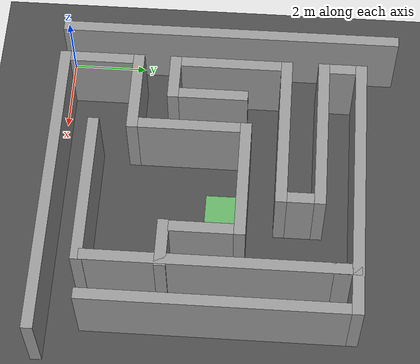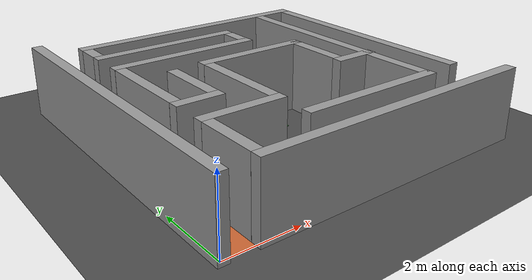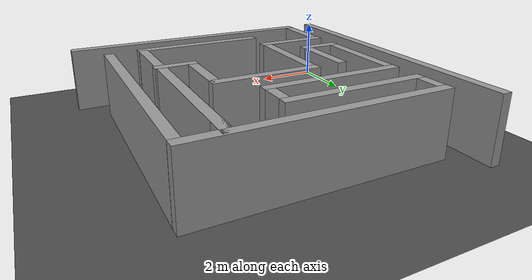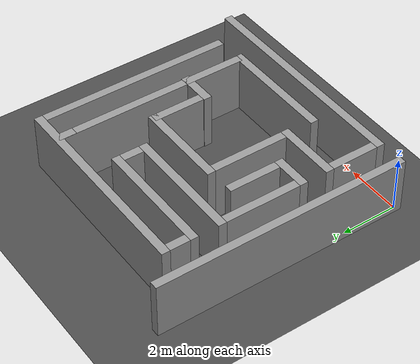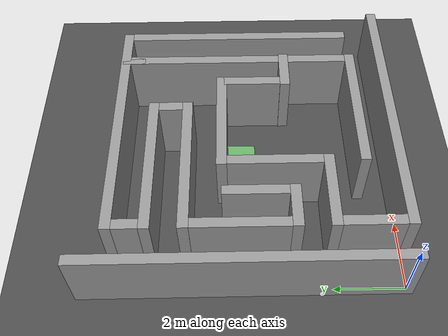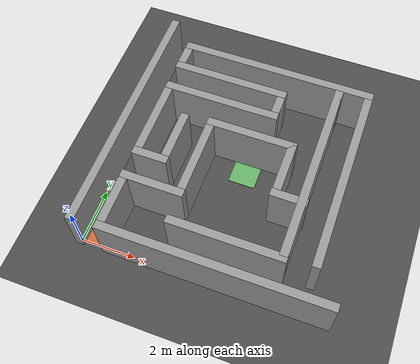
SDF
<sdf version="1.6">
 <world name="default">
  <light name="sun" type="directional">
   <pose>0 0 10 0 -0 0</pose>
   <diffuse>0.8 0.8 0.8 1</diffuse>
   <specular>0.1 0.1 0.1 1</specular>
   <attenuation>
    <range>1000</range>
    <constant>0.9</constant>
    <linear>0.01</linear>
    <quadratic>0.001</quadratic>
   </attenuation>
   <direction>-0.5 0.5 -1</direction>
  </light>
  <model name="ground_plane">
   <static>1</static>
   <link name="link">
    <collision name="collision">
     <geometry><plane><normal>0 0 1</normal><size>20 20</size></plane></geometry>
     <surface><friction><ode><mu>100</mu><mu2>50</mu2></ode></friction></surface>
    </collision>
    <visual name="visual">
     <cast_shadows>0</cast_shadows>
     <geometry><plane><normal>0 0 1</normal><size>20 20</size></plane></geometry>
     <material>
      <script>
       <uri>model://asphalt_plane/materials/scripts</uri>
       <uri>model://asphalt_plane/materials/textures</uri>
       <name>vrc/asphalt</name>
      </script>
     </material>
    </visual>
   </link>
  </model>
  <gravity>0 0 -9.8</gravity>
  <magnetic_field>6e-06 2.3e-05 -4.2e-05</magnetic_field>
  <atmosphere type="adiabatic"/>
  <physics name="default_physics" default="0" type="ode">
   <max_step_size>0.001</max_step_size>
   <real_time_factor>1</real_time_factor>
   <real_time_update_rate>1000</real_time_update_rate>
  </physics>
  <scene><ambient>0.4 0.4 0.4 1</ambient><background>0.7 0.7 0.7 1</background><shadows>1</shadows></scene>
  <spherical_coordinates>
   <surface_model>EARTH_WGS84</surface_model>
   <latitude_deg>0</latitude_deg>
   <longitude_deg>0</longitude_deg>
   <elevation>0</elevation>
   <heading_deg>0</heading_deg>
  </spherical_coordinates>
  <model name="box_goal">
   <static>1</static>
   <link name="link">
    <inertial>
     <mass>1</mass>
     <inertia>
      <ixx>0.166667</ixx>
      <ixy>0</ixy>
      <ixz>0</ixz>
      <iyy>0.166667</iyy>
      <iyz>0</iyz>
      <izz>0.166667</izz>
     </inertia>
    </inertial>
    <visual name="visual">
     <geometry><box><size>1 1 0.1</size></box></geometry>
     <material>
      <script><name>Gazebo/Grey</name><uri>file://media/materials/scripts/gazebo.material</uri></script>
      <ambient>0.3 1 0.3 1</ambient>
      <diffuse>0.4 0.7 0.4 1</diffuse>
      <specular>0.01 0.05 0.01 1</specular>
      <emissive>0 0.02 0 1</emissive>
      <shader type="vertex"><normal_map>__default__</normal_map></shader>
     </material>
    </visual>
    <collision name="collision">
     <geometry><box><size>1 1 0.1</size></box></geometry>
     <surface>
      <friction>
       <ode><mu>1</mu><mu2>1</mu2><fdir1>0 0 0</fdir1><slip1>0</slip1><slip2>0</slip2></ode>
       <torsional>
        <coefficient>1</coefficient>
        <patch_radius>0</patch_radius>
        <surface_radius>0</surface_radius>
        <use_patch_radius>1</use_patch_radius>
        <ode><slip>0</slip></ode>
       </torsional>
      </friction>
      <bounce><restitution_coefficient>0</restitution_coefficient><threshold>1e+06</threshold></bounce>
      <contact>
       <collide_without_contact>0</collide_without_contact>
       <collide_without_contact_bitmask>1</collide_without_contact_bitmask>
       <collide_bitmask>1</collide_bitmask>
       <ode>
        <soft_cfm>0</soft_cfm>
        <soft_erp>0.2</soft_erp>
        <kp>1e+13</kp>
        <kd>1</kd>
        <max_vel>0.01</max_vel>
        <min_depth>0</min_depth>
       </ode>
       <bullet>
        <split_impulse>1</split_impulse>
        <split_impulse_penetration_threshold>-0.01</split_impulse_penetration_threshold>
        <soft_cfm>0</soft_cfm>
        <soft_erp>0.2</soft_erp>
        <kp>1e+13</kp>
        <kd>1</kd>
       </bullet>
      </contact>
     </surface>
    </collision>
   </link>
   <static>0</static>
   <pose>4.5 4.5 -0.042 0 -0 0</pose>
  </model>
  <model name="box_init">
   <static>1</static>
   <link name="link">
    <inertial>
     <mass>1</mass>
     <inertia>
      <ixx>0.166667</ixx>
      <ixy>0</ixy>
      <ixz>0</ixz>
      <iyy>0.166667</iyy>
      <iyz>0</iyz>
      <izz>0.166667</izz>
     </inertia>
    </inertial>
    <visual name="visual">
     <geometry><box><size>1 1 0.1</size></box></geometry>
     <material>
      <script><name>Gazebo/Grey</name><uri>file://media/materials/scripts/gazebo.material</uri></script>
      <ambient>1 0.5 0.2 1</ambient>
      <diffuse>0.8 0.4 0.2 1</diffuse>
      <specular>0.05 0.02 0.01 1</specular>
      <emissive>0 0 0 1</emissive>
      <shader type="vertex"><normal_map>__default__</normal_map></shader>
     </material>
    </visual>
    <collision name="collision">
     <geometry><box><size>1 1 0.1</size></box></geometry>
     <surface>
      <friction>
       <ode><mu>1</mu><mu2>1</mu2><fdir1>0 0 0</fdir1><slip1>0</slip1><slip2>0</slip2></ode>
       <torsional>
        <coefficient>1</coefficient>
        <patch_radius>0</patch_radius>
        <surface_radius>0</surface_radius>
        <use_patch_radius>1</use_patch_radius>
        <ode><slip>0</slip></ode>
       </torsional>
      </friction>
      <bounce><restitution_coefficient>0</restitution_coefficient><threshold>1e+06</threshold></bounce>
      <contact>
       <collide_without_contact>0</collide_without_contact>
       <collide_without_contact_bitmask>1</collide_without_contact_bitmask>
       <collide_bitmask>1</collide_bitmask>
       <ode>
        <soft_cfm>0</soft_cfm>
        <soft_erp>0.2</soft_erp>
        <kp>1e+13</kp>
        <kd>1</kd>
        <max_vel>0.01</max_vel>
        <min_depth>0</min_depth>
       </ode>
       <bullet>
        <split_impulse>1</split_impulse>
        <split_impulse_penetration_threshold>-0.01</split_impulse_penetration_threshold>
        <soft_cfm>0</soft_cfm>
        <soft_erp>0.2</soft_erp>
        <kp>1e+13</kp>
        <kd>1</kd>
       </bullet>
      </contact>
     </surface>
    </collision>
   </link>
   <static>0</static>
   <allow_auto_disable>0</allow_auto_disable>
   <pose>0.5 0.5 -0.042 0 -0 0</pose>
  </model>
  <model name="greywall_9L4W">
   <link name="link">
    <pose>0 4.425 1 0 -0 1.57</pose>
    <inertial>
     <mass>20</mass>
     <inertia><ixx>1</ixx><ixy>0</ixy><ixz>0</ixz><iyy>1</iyy><iyz>0</iyz><izz>1</izz></inertia>
    </inertial>
    <visual name="ModelPreview_1::link::visual_1">
     <geometry><box><size>9.15 0.3 2</size></box></geometry>
     <material>
      <script>
       <uri>model://grey_wall/materials/scripts</uri>
       <uri>model://grey_wall/materials/textures</uri>
       <name>vrc/grey_wall</name>
      </script>
      <ambient>1 1 1 1</ambient>
      <diffuse>1 1 1 1</diffuse>
      <specular>0 0 0 1</specular>
      <emissive>0 0 0 1</emissive>
      <shader type="vertex"><normal_map>__default__</normal_map></shader>
     </material>
    </visual>
    <collision name="collision">
     <geometry><box><size>9.15 0.3 2</size></box></geometry>
     <surface>
      <friction>
       <ode><mu>1</mu><mu2>1</mu2><fdir1>0 0 0</fdir1><slip1>0</slip1><slip2>0</slip2></ode>
       <torsional>
        <coefficient>1</coefficient>
        <patch_radius>0</patch_radius>
        <surface_radius>0</surface_radius>
        <use_patch_radius>1</use_patch_radius>
        <ode><slip>0</slip></ode>
       </torsional>
      </friction>
      <bounce><restitution_coefficient>0</restitution_coefficient><threshold>1e+06</threshold></bounce>
      <contact>
       <collide_without_contact>0</collide_without_contact>
       <collide_without_contact_bitmask>1</collide_without_contact_bitmask>
       <collide_bitmask>1</collide_bitmask>
       <ode>
        <soft_cfm>0</soft_cfm>
        <soft_erp>0.2</soft_erp>
        <kp>1e+13</kp>
        <kd>1</kd>
        <max_vel>0.01</max_vel>
        <min_depth>0</min_depth>
       </ode>
       <bullet>
        <split_impulse>1</split_impulse>
        <split_impulse_penetration_threshold>-0.01</split_impulse_penetration_threshold>
        <soft_cfm>0</soft_cfm>
        <soft_erp>0.2</soft_erp>
        <kp>1e+13</kp>
        <kd>1</kd>
       </bullet>
      </contact>
     </surface>
    </collision>
   </link>
   <static>1</static>
  </model>
  <model name="greywall_8L36S">
   <link name="link">
    <pose>4.925 0 1 0 -0 0</pose>
    <inertial>
     <mass>20</mass>
     <inertia><ixx>1</ixx><ixy>0</ixy><ixz>0</ixz><iyy>1</iyy><iyz>0</iyz><izz>1</izz></inertia>
    </inertial>
    <visual name="ModelPreview_1::link::visual_1">
     <geometry><box><size>8.15 0.3 2</size></box></geometry>
     <material>
      <script>
       <uri>model://grey_wall/materials/scripts</uri>
       <uri>model://grey_wall/materials/textures</uri>
       <name>vrc/grey_wall</name>
      </script>
      <ambient>1 1 1 1</ambient>
      <diffuse>1 1 1 1</diffuse>
      <specular>0 0 0 1</specular>
      <emissive>0 0 0 1</emissive>
      <shader type="vertex"><normal_map>__default__</normal_map></shader>
     </material>
    </visual>
    <collision name="collision">
     <geometry><box><size>8.15 0.3 2</size></box></geometry>
     <surface>
      <friction>
       <ode><mu>1</mu><mu2>1</mu2><fdir1>0 0 0</fdir1><slip1>0</slip1><slip2>0</slip2></ode>
       <torsional>
        <coefficient>1</coefficient>
        <patch_radius>0</patch_radius>
        <surface_radius>0</surface_radius>
        <use_patch_radius>1</use_patch_radius>
        <ode><slip>0</slip></ode>
       </torsional>
      </friction>
      <bounce><restitution_coefficient>0</restitution_coefficient><threshold>1e+06</threshold></bounce>
      <contact>
       <collide_without_contact>0</collide_without_contact>
       <collide_without_contact_bitmask>1</collide_without_contact_bitmask>
       <collide_bitmask>1</collide_bitmask>
       <ode>
        <soft_cfm>0</soft_cfm>
        <soft_erp>0.2</soft_erp>
        <kp>1e+13</kp>
        <kd>1</kd>
        <max_vel>0.01</max_vel>
        <min_depth>0</min_depth>
       </ode>
       <bullet>
        <split_impulse>1</split_impulse>
        <split_impulse_penetration_threshold>-0.01</split_impulse_penetration_threshold>
        <soft_cfm>0</soft_cfm>
        <soft_erp>0.2</soft_erp>
        <kp>1e+13</kp>
        <kd>1</kd>
       </bullet>
      </contact>
     </surface>
    </collision>
   </link>
   <static>1</static>
  </model>
  <model name="greywall_7L66W">
   <link name="link">
    <pose>7 3.575 1 0 -0 1.57</pose>
    <inertial>
     <mass>20</mass>
     <inertia><ixx>1</ixx><ixy>0</ixy><ixz>0</ixz><iyy>1</iyy><iyz>0</iyz><izz>1</izz></inertia>
    </inertial>
    <visual name="ModelPreview_1::link::visual_1">
     <geometry><box><size>6.85 0.3 2</size></box></geometry>
     <material>
      <script>
       <uri>model://grey_wall/materials/scripts</uri>
       <uri>model://grey_wall/materials/textures</uri>
       <name>vrc/grey_wall</name>
      </script>
      <ambient>1 1 1 1</ambient>
      <diffuse>1 1 1 1</diffuse>
      <specular>0 0 0 1</specular>
      <emissive>0 0 0 1</emissive>
      <shader type="vertex"><normal_map>__default__</normal_map></shader>
     </material>
    </visual>
    <collision name="collision">
     <geometry><box><size>6.85 0.3 2</size></box></geometry>
     <surface>
      <friction>
       <ode><mu>1</mu><mu2>1</mu2><fdir1>0 0 0</fdir1><slip1>0</slip1><slip2>0</slip2></ode>
       <torsional>
        <coefficient>1</coefficient>
        <patch_radius>0</patch_radius>
        <surface_radius>0</surface_radius>
        <use_patch_radius>1</use_patch_radius>
        <ode><slip>0</slip></ode>
       </torsional>
      </friction>
      <bounce><restitution_coefficient>0</restitution_coefficient><threshold>1e+06</threshold></bounce>
      <contact>
       <collide_without_contact>0</collide_without_contact>
       <collide_without_contact_bitmask>1</collide_without_contact_bitmask>
       <collide_bitmask>1</collide_bitmask>
       <ode>
        <soft_cfm>0</soft_cfm>
        <soft_erp>0.2</soft_erp>
        <kp>1e+13</kp>
        <kd>1</kd>
        <max_vel>0.01</max_vel>
        <min_depth>0</min_depth>
       </ode>
       <bullet>
        <split_impulse>1</split_impulse>
        <split_impulse_penetration_threshold>-0.01</split_impulse_penetration_threshold>
        <soft_cfm>0</soft_cfm>
        <soft_erp>0.2</soft_erp>
        <kp>1e+13</kp>
        <kd>1</kd>
       </bullet>
      </contact>
     </surface>
    </collision>
   </link>
   <static>1</static>
   <pose>-0.07235 0.8652 0 0 -0 0</pose>
  </model>
  <model name="greywall_7L76W">
   <link name="link">
    <pose>8 4.425 1 0 -0 1.57</pose>
    <inertial>
     <mass>20</mass>
     <inertia><ixx>1</ixx><ixy>0</ixy><ixz>0</ixz><iyy>1</iyy><iyz>0</iyz><izz>1</izz></inertia>
    </inertial>
    <visual name="ModelPreview_1::link::visual_1">
     <geometry><box><size>6.85 0.3 2</size></box></geometry>
     <material>
      <script>
       <uri>model://grey_wall/materials/scripts</uri>
       <uri>model://grey_wall/materials/textures</uri>
       <name>vrc/grey_wall</name>
      </script>
      <ambient>1 1 1 1</ambient>
      <diffuse>1 1 1 1</diffuse>
      <specular>0 0 0 1</specular>
      <emissive>0 0 0 1</emissive>
      <shader type="vertex"><normal_map>__default__</normal_map></shader>
     </material>
    </visual>
    <collision name="collision">
     <geometry><box><size>6.85 0.3 2</size></box></geometry>
     <surface>
      <friction>
       <ode><mu>1</mu><mu2>1</mu2><fdir1>0 0 0</fdir1><slip1>0</slip1><slip2>0</slip2></ode>
       <torsional>
        <coefficient>1</coefficient>
        <patch_radius>0</patch_radius>
        <surface_radius>0</surface_radius>
        <use_patch_radius>1</use_patch_radius>
        <ode><slip>0</slip></ode>
       </torsional>
      </friction>
      <bounce><restitution_coefficient>0</restitution_coefficient><threshold>1e+06</threshold></bounce>
      <contact>
       <collide_without_contact>0</collide_without_contact>
       <collide_without_contact_bitmask>1</collide_without_contact_bitmask>
       <collide_bitmask>1</collide_bitmask>
       <ode>
        <soft_cfm>0</soft_cfm>
        <soft_erp>0.2</soft_erp>
        <kp>1e+13</kp>
        <kd>1</kd>
        <max_vel>0.01</max_vel>
        <min_depth>0</min_depth>
       </ode>
       <bullet>
        <split_impulse>1</split_impulse>
        <split_impulse_penetration_threshold>-0.01</split_impulse_penetration_threshold>
        <soft_cfm>0</soft_cfm>
        <soft_erp>0.2</soft_erp>
        <kp>1e+13</kp>
        <kd>1</kd>
       </bullet>
      </contact>
     </surface>
    </collision>
   </link>
   <static>1</static>
  </model>
  <model name="greywall_7L43N">
   <link name="link">
    <pose>4.5 8 1 0 -0 0</pose>
    <inertial>
     <mass>20</mass>
     <inertia><ixx>1</ixx><ixy>0</ixy><ixz>0</ixz><iyy>1</iyy><iyz>0</iyz><izz>1</izz></inertia>
    </inertial>
    <visual name="ModelPreview_1::link::visual_1">
     <geometry><box><size>7.3 0.3 2</size></box></geometry>
     <material>
      <script>
       <uri>model://grey_wall/materials/scripts</uri>
       <uri>model://grey_wall/materials/textures</uri>
       <name>vrc/grey_wall</name>
      </script>
      <ambient>1 1 1 1</ambient>
      <diffuse>1 1 1 1</diffuse>
      <specular>0 0 0 1</specular>
      <emissive>0 0 0 1</emissive>
      <shader type="vertex"><normal_map>__default__</normal_map></shader>
     </material>
    </visual>
    <collision name="collision">
     <geometry><box><size>7.3 0.3 2</size></box></geometry>
     <surface>
      <friction>
       <ode><mu>1</mu><mu2>1</mu2><fdir1>0 0 0</fdir1><slip1>0</slip1><slip2>0</slip2></ode>
       <torsional>
        <coefficient>1</coefficient>
        <patch_radius>0</patch_radius>
        <surface_radius>0</surface_radius>
        <use_patch_radius>1</use_patch_radius>
        <ode><slip>0</slip></ode>
       </torsional>
      </friction>
      <bounce><restitution_coefficient>0</restitution_coefficient><threshold>1e+06</threshold></bounce>
      <contact>
       <collide_without_contact>0</collide_without_contact>
       <collide_without_contact_bitmask>1</collide_without_contact_bitmask>
       <collide_bitmask>1</collide_bitmask>
       <ode>
        <soft_cfm>0</soft_cfm>
        <soft_erp>0.2</soft_erp>
        <kp>1e+13</kp>
        <kd>1</kd>
        <max_vel>0.01</max_vel>
        <min_depth>0</min_depth>
       </ode>
       <bullet>
        <split_impulse>1</split_impulse>
        <split_impulse_penetration_threshold>-0.01</split_impulse_penetration_threshold>
        <soft_cfm>0</soft_cfm>
        <soft_erp>0.2</soft_erp>
        <kp>1e+13</kp>
        <kd>1</kd>
       </bullet>
      </contact>
     </surface>
    </collision>
   </link>
   <static>1</static>
  </model>
  <model name="greywall_1L16W">
   <link name="link">
    <pose>1 7.5 1 0 -0 1.57</pose>
    <inertial>
     <mass>20</mass>
     <inertia><ixx>1</ixx><ixy>0</ixy><ixz>0</ixz><iyy>1</iyy><iyz>0</iyz><izz>1</izz></inertia>
    </inertial>
    <visual name="ModelPreview_1::link::visual_1">
     <geometry><box><size>0.7 0.3 2</size></box></geometry>
     <material>
      <script>
       <uri>model://grey_wall/materials/scripts</uri>
       <uri>model://grey_wall/materials/textures</uri>
       <name>vrc/grey_wall</name>
      </script>
      <ambient>1 1 1 1</ambient>
      <diffuse>1 1 1 1</diffuse>
      <specular>0 0 0 1</specular>
      <emissive>0 0 0 1</emissive>
      <shader type="vertex"><normal_map>__default__</normal_map></shader>
     </material>
    </visual>
    <collision name="collision">
     <geometry><box><size>0.7 0.3 2</size></box></geometry>
     <surface>
      <friction>
       <ode><mu>1</mu><mu2>1</mu2><fdir1>0 0 0</fdir1><slip1>0</slip1><slip2>0</slip2></ode>
       <torsional>
        <coefficient>1</coefficient>
        <patch_radius>0</patch_radius>
        <surface_radius>0</surface_radius>
        <use_patch_radius>1</use_patch_radius>
        <ode><slip>0</slip></ode>
       </torsional>
      </friction>
      <bounce><restitution_coefficient>0</restitution_coefficient><threshold>1e+06</threshold></bounce>
      <contact>
       <collide_without_contact>0</collide_without_contact>
       <collide_without_contact_bitmask>1</collide_without_contact_bitmask>
       <collide_bitmask>1</collide_bitmask>
       <ode>
        <soft_cfm>0</soft_cfm>
        <soft_erp>0.2</soft_erp>
        <kp>1e+13</kp>
        <kd>1</kd>
        <max_vel>0.01</max_vel>
        <min_depth>0</min_depth>
       </ode>
       <bullet>
        <split_impulse>1</split_impulse>
        <split_impulse_penetration_threshold>-0.01</split_impulse_penetration_threshold>
        <soft_cfm>0</soft_cfm>
        <soft_erp>0.2</soft_erp>
        <kp>1e+13</kp>
        <kd>1</kd>
       </bullet>
      </contact>
     </surface>
    </collision>
   </link>
   <static>1</static>
  </model>
  <model name="greywall_1L51W">
   <link name="link">
    <pose>5 6.5 1 0 -0 1.57</pose>
    <inertial>
     <mass>20</mass>
     <inertia><ixx>1</ixx><ixy>0</ixy><ixz>0</ixz><iyy>1</iyy><iyz>0</iyz><izz>1</izz></inertia>
    </inertial>
    <visual name="ModelPreview_1::link::visual_1">
     <geometry><box><size>0.7 0.3 2</size></box></geometry>
     <material>
      <script>
       <uri>model://grey_wall/materials/scripts</uri>
       <uri>model://grey_wall/materials/textures</uri>
       <name>vrc/grey_wall</name>
      </script>
      <ambient>1 1 1 1</ambient>
      <diffuse>1 1 1 1</diffuse>
      <specular>0 0 0 1</specular>
      <emissive>0 0 0 1</emissive>
      <shader type="vertex"><normal_map>__default__</normal_map></shader>
     </material>
    </visual>
    <collision name="collision">
     <geometry><box><size>0.7 0.3 2</size></box></geometry>
     <surface>
      <friction>
       <ode><mu>1</mu><mu2>1</mu2><fdir1>0 0 0</fdir1><slip1>0</slip1><slip2>0</slip2></ode>
       <torsional>
        <coefficient>1</coefficient>
        <patch_radius>0</patch_radius>
        <surface_radius>0</surface_radius>
        <use_patch_radius>1</use_patch_radius>
        <ode><slip>0</slip></ode>
       </torsional>
      </friction>
      <bounce><restitution_coefficient>0</restitution_coefficient><threshold>1e+06</threshold></bounce>
      <contact>
       <collide_without_contact>0</collide_without_contact>
       <collide_without_contact_bitmask>1</collide_without_contact_bitmask>
       <collide_bitmask>1</collide_bitmask>
       <ode>
        <soft_cfm>0</soft_cfm>
        <soft_erp>0.2</soft_erp>
        <kp>1e+13</kp>
        <kd>1</kd>
        <max_vel>0.01</max_vel>
        <min_depth>0</min_depth>
       </ode>
       <bullet>
        <split_impulse>1</split_impulse>
        <split_impulse_penetration_threshold>-0.01</split_impulse_penetration_threshold>
        <soft_cfm>0</soft_cfm>
        <soft_erp>0.2</soft_erp>
        <kp>1e+13</kp>
        <kd>1</kd>
       </bullet>
      </contact>
     </surface>
    </collision>
   </link>
   <static>1</static>
  </model>
  <model name="greywall_1L12S">
   <link name="link">
    <pose>1.5 3 1 0 -0 0</pose>
    <inertial>
     <mass>20</mass>
     <inertia><ixx>1</ixx><ixy>0</ixy><ixz>0</ixz><iyy>1</iyy><iyz>0</iyz><izz>1</izz></inertia>
    </inertial>
    <visual name="ModelPreview_1::link::visual_1">
     <geometry><box><size>1.3 0.3 2</size></box></geometry>
     <material>
      <script>
       <uri>model://grey_wall/materials/scripts</uri>
       <uri>model://grey_wall/materials/textures</uri>
       <name>vrc/grey_wall</name>
      </script>
      <ambient>1 1 1 1</ambient>
      <diffuse>1 1 1 1</diffuse>
      <specular>0 0 0 1</specular>
      <emissive>0 0 0 1</emissive>
      <shader type="vertex"><normal_map>__default__</normal_map></shader>
     </material>
    </visual>
    <collision name="collision">
     <geometry><box><size>1.3 0.3 2</size></box></geometry>
     <surface>
      <friction>
       <ode><mu>1</mu><mu2>1</mu2><fdir1>0 0 0</fdir1><slip1>0</slip1><slip2>0</slip2></ode>
       <torsional>
        <coefficient>1</coefficient>
        <patch_radius>0</patch_radius>
        <surface_radius>0</surface_radius>
        <use_patch_radius>1</use_patch_radius>
        <ode><slip>0</slip></ode>
       </torsional>
      </friction>
      <bounce><restitution_coefficient>0</restitution_coefficient><threshold>1e+06</threshold></bounce>
      <contact>
       <collide_without_contact>0</collide_without_contact>
       <collide_without_contact_bitmask>1</collide_without_contact_bitmask>
       <collide_bitmask>1</collide_bitmask>
       <ode>
        <soft_cfm>0</soft_cfm>
        <soft_erp>0.2</soft_erp>
        <kp>1e+13</kp>
        <kd>1</kd>
        <max_vel>0.01</max_vel>
        <min_depth>0</min_depth>
       </ode>
       <bullet>
        <split_impulse>1</split_impulse>
        <split_impulse_penetration_threshold>-0.01</split_impulse_penetration_threshold>
        <soft_cfm>0</soft_cfm>
        <soft_erp>0.2</soft_erp>
        <kp>1e+13</kp>
        <kd>1</kd>
       </bullet>
      </contact>
     </surface>
    </collision>
   </link>
   <static>1</static>
  </model>
  <model name="greywall_2L9W">
   <link name="link">
    <pose>1 1 1 0 -0 1.57</pose>
    <inertial>
     <mass>20</mass>
     <inertia><ixx>1</ixx><ixy>0</ixy><ixz>0</ixz><iyy>1</iyy><iyz>0</iyz><izz>1</izz></inertia>
    </inertial>
    <visual name="ModelPreview_1::link::visual_1">
     <geometry><box><size>1.7 0.3 2</size></box></geometry>
     <material>
      <script>
       <uri>model://grey_wall/materials/scripts</uri>
       <uri>model://grey_wall/materials/textures</uri>
       <name>vrc/grey_wall</name>
      </script>
      <ambient>1 1 1 1</ambient>
      <diffuse>1 1 1 1</diffuse>
      <specular>0 0 0 1</specular>
      <emissive>0 0 0 1</emissive>
      <shader type="vertex"><normal_map>__default__</normal_map></shader>
     </material>
    </visual>
    <collision name="collision">
     <geometry><box><size>1.7 0.3 2</size></box></geometry>
     <surface>
      <friction>
       <ode><mu>1</mu><mu2>1</mu2><fdir1>0 0 0</fdir1><slip1>0</slip1><slip2>0</slip2></ode>
       <torsional>
        <coefficient>1</coefficient>
        <patch_radius>0</patch_radius>
        <surface_radius>0</surface_radius>
        <use_patch_radius>1</use_patch_radius>
        <ode><slip>0</slip></ode>
       </torsional>
      </friction>
      <bounce><restitution_coefficient>0</restitution_coefficient><threshold>1e+06</threshold></bounce>
      <contact>
       <collide_without_contact>0</collide_without_contact>
       <collide_without_contact_bitmask>1</collide_without_contact_bitmask>
       <collide_bitmask>1</collide_bitmask>
       <ode>
        <soft_cfm>0</soft_cfm>
        <soft_erp>0.2</soft_erp>
        <kp>1e+13</kp>
        <kd>1</kd>
        <max_vel>0.01</max_vel>
        <min_depth>0</min_depth>
       </ode>
       <bullet>
        <split_impulse>1</split_impulse>
        <split_impulse_penetration_threshold>-0.01</split_impulse_penetration_threshold>
        <soft_cfm>0</soft_cfm>
        <soft_erp>0.2</soft_erp>
        <kp>1e+13</kp>
        <kd>1</kd>
       </bullet>
      </contact>
     </surface>
    </collision>
   </link>
   <static>1</static>
  </model>
  <model name="greywall_4L34S">
   <link name="link">
    <pose>3 7 1 0 -0 0</pose>
    <inertial>
     <mass>20</mass>
     <inertia><ixx>1</ixx><ixy>0</ixy><ixz>0</ixz><iyy>1</iyy><iyz>0</iyz><izz>1</izz></inertia>
    </inertial>
    <visual name="ModelPreview_1::link::visual_1">
     <geometry><box><size>4.3 0.3 2</size></box></geometry>
     <material>
      <script>
       <uri>model://grey_wall/materials/scripts</uri>
       <uri>model://grey_wall/materials/textures</uri>
       <name>vrc/grey_wall</name>
      </script>
      <ambient>1 1 1 1</ambient>
      <diffuse>1 1 1 1</diffuse>
      <specular>0 0 0 1</specular>
      <emissive>0 0 0 1</emissive>
      <shader type="vertex"><normal_map>__default__</normal_map></shader>
     </material>
    </visual>
    <collision name="collision">
     <geometry><box><size>4.3 0.3 2</size></box></geometry>
     <surface>
      <friction>
       <ode><mu>1</mu><mu2>1</mu2><fdir1>0 0 0</fdir1><slip1>0</slip1><slip2>0</slip2></ode>
       <torsional>
        <coefficient>1</coefficient>
        <patch_radius>0</patch_radius>
        <surface_radius>0</surface_radius>
        <use_patch_radius>1</use_patch_radius>
        <ode><slip>0</slip></ode>
       </torsional>
      </friction>
      <bounce><restitution_coefficient>0</restitution_coefficient><threshold>1e+06</threshold></bounce>
      <contact>
       <collide_without_contact>0</collide_without_contact>
       <collide_without_contact_bitmask>1</collide_without_contact_bitmask>
       <collide_bitmask>1</collide_bitmask>
       <ode>
        <soft_cfm>0</soft_cfm>
        <soft_erp>0.2</soft_erp>
        <kp>1e+13</kp>
        <kd>1</kd>
        <max_vel>0.01</max_vel>
        <min_depth>0</min_depth>
       </ode>
       <bullet>
        <split_impulse>1</split_impulse>
        <split_impulse_penetration_threshold>-0.01</split_impulse_penetration_threshold>
        <soft_cfm>0</soft_cfm>
        <soft_erp>0.2</soft_erp>
        <kp>1e+13</kp>
        <kd>1</kd>
       </bullet>
      </contact>
     </surface>
    </collision>
   </link>
   <static>1</static>
  </model>
  <model name="greywall_4L33S">
   <link name="link">
    <pose>3 6 1 0 -0 0</pose>
    <inertial>
     <mass>20</mass>
     <inertia><ixx>1</ixx><ixy>0</ixy><ixz>0</ixz><iyy>1</iyy><iyz>0</iyz><izz>1</izz></inertia>
    </inertial>
    <visual name="ModelPreview_1::link::visual_1">
     <geometry><box><size>4.3 0.3 2</size></box></geometry>
     <material>
      <script>
       <uri>model://grey_wall/materials/scripts</uri>
       <uri>model://grey_wall/materials/textures</uri>
       <name>vrc/grey_wall</name>
      </script>
      <ambient>1 1 1 1</ambient>
      <diffuse>1 1 1 1</diffuse>
      <specular>0 0 0 1</specular>
      <emissive>0 0 0 1</emissive>
      <shader type="vertex"><normal_map>__default__</normal_map></shader>
     </material>
    </visual>
    <collision name="collision">
     <geometry><box><size>4.3 0.3 2</size></box></geometry>
     <surface>
      <friction>
       <ode><mu>1</mu><mu2>1</mu2><fdir1>0 0 0</fdir1><slip1>0</slip1><slip2>0</slip2></ode>
       <torsional>
        <coefficient>1</coefficient>
        <patch_radius>0</patch_radius>
        <surface_radius>0</surface_radius>
        <use_patch_radius>1</use_patch_radius>
        <ode><slip>0</slip></ode>
       </torsional>
      </friction>
      <bounce><restitution_coefficient>0</restitution_coefficient><threshold>1e+06</threshold></bounce>
      <contact>
       <collide_without_contact>0</collide_without_contact>
       <collide_without_contact_bitmask>1</collide_without_contact_bitmask>
       <collide_bitmask>1</collide_bitmask>
       <ode>
        <soft_cfm>0</soft_cfm>
        <soft_erp>0.2</soft_erp>
        <kp>1e+13</kp>
        <kd>1</kd>
        <max_vel>0.01</max_vel>
        <min_depth>0</min_depth>
       </ode>
       <bullet>
        <split_impulse>1</split_impulse>
        <split_impulse_penetration_threshold>-0.01</split_impulse_penetration_threshold>
        <soft_cfm>0</soft_cfm>
        <soft_erp>0.2</soft_erp>
        <kp>1e+13</kp>
        <kd>1</kd>
       </bullet>
      </contact>
     </surface>
    </collision>
   </link>
   <static>1</static>
  </model>
  <model name="greywall_2L12E">
   <link name="link">
    <pose>2 4.075 1 0 -0 1.57</pose>
    <inertial>
     <mass>20</mass>
     <inertia><ixx>1</ixx><ixy>0</ixy><ixz>0</ixz><iyy>1</iyy><iyz>0</iyz><izz>1</izz></inertia>
    </inertial>
    <visual name="ModelPreview_1::link::visual_1">
     <geometry><box><size>1.85 0.3 2</size></box></geometry>
     <material>
      <script>
       <uri>model://grey_wall/materials/scripts</uri>
       <uri>model://grey_wall/materials/textures</uri>
       <name>vrc/grey_wall</name>
      </script>
      <ambient>1 1 1 1</ambient>
      <diffuse>1 1 1 1</diffuse>
      <specular>0 0 0 1</specular>
      <emissive>0 0 0 1</emissive>
      <shader type="vertex"><normal_map>__default__</normal_map></shader>
     </material>
    </visual>
    <collision name="collision">
     <geometry><box><size>1.85 0.3 2</size></box></geometry>
     <surface>
      <friction>
       <ode><mu>1</mu><mu2>1</mu2><fdir1>0 0 0</fdir1><slip1>0</slip1><slip2>0</slip2></ode>
       <torsional>
        <coefficient>1</coefficient>
        <patch_radius>0</patch_radius>
        <surface_radius>0</surface_radius>
        <use_patch_radius>1</use_patch_radius>
        <ode><slip>0</slip></ode>
       </torsional>
      </friction>
      <bounce><restitution_coefficient>0</restitution_coefficient><threshold>1e+06</threshold></bounce>
      <contact>
       <collide_without_contact>0</collide_without_contact>
       <collide_without_contact_bitmask>1</collide_without_contact_bitmask>
       <collide_bitmask>1</collide_bitmask>
       <ode>
        <soft_cfm>0</soft_cfm>
        <soft_erp>0.2</soft_erp>
        <kp>1e+13</kp>
        <kd>1</kd>
        <max_vel>0.01</max_vel>
        <min_depth>0</min_depth>
       </ode>
       <bullet>
        <split_impulse>1</split_impulse>
        <split_impulse_penetration_threshold>-0.01</split_impulse_penetration_threshold>
        <soft_cfm>0</soft_cfm>
        <soft_erp>0.2</soft_erp>
        <kp>1e+13</kp>
        <kd>1</kd>
       </bullet>
      </contact>
     </surface>
    </collision>
   </link>
   <static>1</static>
  </model>
  <model name="greywall_3L12W">
   <link name="link">
    <pose>1 4.5 1 0 -0 1.57</pose>
    <inertial>
     <mass>20</mass>
     <inertia><ixx>1</ixx><ixy>0</ixy><ixz>0</ixz><iyy>1</iyy><iyz>0</iyz><izz>1</izz></inertia>
    </inertial>
    <visual name="ModelPreview_1::link::visual_1">
     <geometry><box><size>2.7 0.3 2</size></box></geometry>
     <material>
      <script>
       <uri>model://grey_wall/materials/scripts</uri>
       <uri>model://grey_wall/materials/textures</uri>
       <name>vrc/grey_wall</name>
      </script>
      <ambient>1 1 1 1</ambient>
      <diffuse>1 1 1 1</diffuse>
      <specular>0 0 0 1</specular>
      <emissive>0 0 0 1</emissive>
      <shader type="vertex"><normal_map>__default__</normal_map></shader>
     </material>
    </visual>
    <collision name="collision">
     <geometry><box><size>2.7 0.3 2</size></box></geometry>
     <surface>
      <friction>
       <ode><mu>1</mu><mu2>1</mu2><fdir1>0 0 0</fdir1><slip1>0</slip1><slip2>0</slip2></ode>
       <torsional>
        <coefficient>1</coefficient>
        <patch_radius>0</patch_radius>
        <surface_radius>0</surface_radius>
        <use_patch_radius>1</use_patch_radius>
        <ode><slip>0</slip></ode>
       </torsional>
      </friction>
      <bounce><restitution_coefficient>0</restitution_coefficient><threshold>1e+06</threshold></bounce>
      <contact>
       <collide_without_contact>0</collide_without_contact>
       <collide_without_contact_bitmask>1</collide_without_contact_bitmask>
       <collide_bitmask>1</collide_bitmask>
       <ode>
        <soft_cfm>0</soft_cfm>
        <soft_erp>0.2</soft_erp>
        <kp>1e+13</kp>
        <kd>1</kd>
        <max_vel>0.01</max_vel>
        <min_depth>0</min_depth>
       </ode>
       <bullet>
        <split_impulse>1</split_impulse>
        <split_impulse_penetration_threshold>-0.01</split_impulse_penetration_threshold>
        <soft_cfm>0</soft_cfm>
        <soft_erp>0.2</soft_erp>
        <kp>1e+13</kp>
        <kd>1</kd>
       </bullet>
      </contact>
     </surface>
    </collision>
   </link>
   <static>1</static>
  </model>
  <model name="greywall_2L10N">
   <link name="link">
    <pose>2 2 1 0 -0 0</pose>
    <inertial>
     <mass>20</mass>
     <inertia><ixx>1</ixx><ixy>0</ixy><ixz>0</ixz><iyy>1</iyy><iyz>0</iyz><izz>1</izz></inertia>
    </inertial>
    <visual name="ModelPreview_1::link::visual_1">
     <geometry><box><size>2.3 0.3 2</size></box></geometry>
     <material>
      <script>
       <uri>model://grey_wall/materials/scripts</uri>
       <uri>model://grey_wall/materials/textures</uri>
       <name>vrc/grey_wall</name>
      </script>
      <ambient>1 1 1 1</ambient>
      <diffuse>1 1 1 1</diffuse>
      <specular>0 0 0 1</specular>
      <emissive>0 0 0 1</emissive>
      <shader type="vertex"><normal_map>__default__</normal_map></shader>
     </material>
    </visual>
    <collision name="collision">
     <geometry><box><size>2.3 0.3 2</size></box></geometry>
     <surface>
      <friction>
       <ode><mu>1</mu><mu2>1</mu2><fdir1>0 0 0</fdir1><slip1>0</slip1><slip2>0</slip2></ode>
       <torsional>
        <coefficient>1</coefficient>
        <patch_radius>0</patch_radius>
        <surface_radius>0</surface_radius>
        <use_patch_radius>1</use_patch_radius>
        <ode><slip>0</slip></ode>
       </torsional>
      </friction>
      <bounce><restitution_coefficient>0</restitution_coefficient><threshold>1e+06</threshold></bounce>
      <contact>
       <collide_without_contact>0</collide_without_contact>
       <collide_without_contact_bitmask>1</collide_without_contact_bitmask>
       <collide_bitmask>1</collide_bitmask>
       <ode>
        <soft_cfm>0</soft_cfm>
        <soft_erp>0.2</soft_erp>
        <kp>1e+13</kp>
        <kd>1</kd>
        <max_vel>0.01</max_vel>
        <min_depth>0</min_depth>
       </ode>
       <bullet>
        <split_impulse>1</split_impulse>
        <split_impulse_penetration_threshold>-0.01</split_impulse_penetration_threshold>
        <soft_cfm>0</soft_cfm>
        <soft_erp>0.2</soft_erp>
        <kp>1e+13</kp>
        <kd>1</kd>
       </bullet>
      </contact>
     </surface>
    </collision>
   </link>
   <static>1</static>
  </model>
  <model name="greywall_3L40N">
   <link name="link">
    <pose>4.5 5 1 0 -0 0</pose>
    <inertial>
     <mass>20</mass>
     <inertia><ixx>1</ixx><ixy>0</ixy><ixz>0</ixz><iyy>1</iyy><iyz>0</iyz><izz>1</izz></inertia>
    </inertial>
    <visual name="ModelPreview_1::link::visual_1">
     <geometry><box><size>3.3 0.3 2</size></box></geometry>
     <material>
      <script>
       <uri>model://grey_wall/materials/scripts</uri>
       <uri>model://grey_wall/materials/textures</uri>
       <name>vrc/grey_wall</name>
      </script>
      <ambient>1 1 1 1</ambient>
      <diffuse>1 1 1 1</diffuse>
      <specular>0 0 0 1</specular>
      <emissive>0 0 0 1</emissive>
      <shader type="vertex"><normal_map>__default__</normal_map></shader>
     </material>
    </visual>
    <collision name="collision">
     <geometry><box><size>3.3 0.3 2</size></box></geometry>
     <surface>
      <friction>
       <ode><mu>1</mu><mu2>1</mu2><fdir1>0 0 0</fdir1><slip1>0</slip1><slip2>0</slip2></ode>
       <torsional>
        <coefficient>1</coefficient>
        <patch_radius>0</patch_radius>
        <surface_radius>0</surface_radius>
        <use_patch_radius>1</use_patch_radius>
        <ode><slip>0</slip></ode>
       </torsional>
      </friction>
      <bounce><restitution_coefficient>0</restitution_coefficient><threshold>1e+06</threshold></bounce>
      <contact>
       <collide_without_contact>0</collide_without_contact>
       <collide_without_contact_bitmask>1</collide_without_contact_bitmask>
       <collide_bitmask>1</collide_bitmask>
       <ode>
        <soft_cfm>0</soft_cfm>
        <soft_erp>0.2</soft_erp>
        <kp>1e+13</kp>
        <kd>1</kd>
        <max_vel>0.01</max_vel>
        <min_depth>0</min_depth>
       </ode>
       <bullet>
        <split_impulse>1</split_impulse>
        <split_impulse_penetration_threshold>-0.01</split_impulse_penetration_threshold>
        <soft_cfm>0</soft_cfm>
        <soft_erp>0.2</soft_erp>
        <kp>1e+13</kp>
        <kd>1</kd>
       </bullet>
      </contact>
     </surface>
    </collision>
   </link>
   <static>1</static>
  </model>
  <model name="greywall_4L19S">
   <link name="link">
    <pose>4.075 1 1 0 -0 0</pose>
    <inertial>
     <mass>20</mass>
     <inertia><ixx>1</ixx><ixy>0</ixy><ixz>0</ixz><iyy>1</iyy><iyz>0</iyz><izz>1</izz></inertia>
    </inertial>
    <visual name="ModelPreview_1::link::visual_1">
     <geometry><box><size>4.15 0.3 2</size></box></geometry>
     <material>
      <script>
       <uri>model://grey_wall/materials/scripts</uri>
       <uri>model://grey_wall/materials/textures</uri>
       <name>vrc/grey_wall</name>
      </script>
      <ambient>1 1 1 1</ambient>
      <diffuse>1 1 1 1</diffuse>
      <specular>0 0 0 1</specular>
      <emissive>0 0 0 1</emissive>
      <shader type="vertex"><normal_map>__default__</normal_map></shader>
     </material>
    </visual>
    <collision name="collision">
     <geometry><box><size>4.15 0.3 2</size></box></geometry>
     <surface>
      <friction>
       <ode><mu>1</mu><mu2>1</mu2><fdir1>0 0 0</fdir1><slip1>0</slip1><slip2>0</slip2></ode>
       <torsional>
        <coefficient>1</coefficient>
        <patch_radius>0</patch_radius>
        <surface_radius>0</surface_radius>
        <use_patch_radius>1</use_patch_radius>
        <ode><slip>0</slip></ode>
       </torsional>
      </friction>
      <bounce><restitution_coefficient>0</restitution_coefficient><threshold>1e+06</threshold></bounce>
      <contact>
       <collide_without_contact>0</collide_without_contact>
       <collide_without_contact_bitmask>1</collide_without_contact_bitmask>
       <collide_bitmask>1</collide_bitmask>
       <ode>
        <soft_cfm>0</soft_cfm>
        <soft_erp>0.2</soft_erp>
        <kp>1e+13</kp>
        <kd>1</kd>
        <max_vel>0.01</max_vel>
        <min_depth>0</min_depth>
       </ode>
       <bullet>
        <split_impulse>1</split_impulse>
        <split_impulse_penetration_threshold>-0.01</split_impulse_penetration_threshold>
        <soft_cfm>0</soft_cfm>
        <soft_erp>0.2</soft_erp>
        <kp>1e+13</kp>
        <kd>1</kd>
       </bullet>
      </contact>
     </surface>
    </collision>
   </link>
   <static>1</static>
   <pose>0.9311 -0.029783 0 0 -0 0</pose>
  </model>
  <model name="greywall_3L30W">
   <link name="link">
    <pose>3 3.5 1 0 -0 1.57</pose>
    <inertial>
     <mass>20</mass>
     <inertia><ixx>1</ixx><ixy>0</ixy><ixz>0</ixz><iyy>1</iyy><iyz>0</iyz><izz>1</izz></inertia>
    </inertial>
    <visual name="ModelPreview_1::link::visual_1">
     <geometry><box><size>2.7 0.3 2</size></box></geometry>
     <material>
      <script>
       <uri>model://grey_wall/materials/scripts</uri>
       <uri>model://grey_wall/materials/textures</uri>
       <name>vrc/grey_wall</name>
      </script>
      <ambient>1 1 1 1</ambient>
      <diffuse>1 1 1 1</diffuse>
      <specular>0 0 0 1</specular>
      <emissive>0 0 0 1</emissive>
      <shader type="vertex"><normal_map>__default__</normal_map></shader>
     </material>
    </visual>
    <collision name="collision">
     <geometry><box><size>2.7 0.3 2</size></box></geometry>
     <surface>
      <friction>
       <ode><mu>1</mu><mu2>1</mu2><fdir1>0 0 0</fdir1><slip1>0</slip1><slip2>0</slip2></ode>
       <torsional>
        <coefficient>1</coefficient>
        <patch_radius>0</patch_radius>
        <surface_radius>0</surface_radius>
        <use_patch_radius>1</use_patch_radius>
        <ode><slip>0</slip></ode>
       </torsional>
      </friction>
      <bounce><restitution_coefficient>0</restitution_coefficient><threshold>1e+06</threshold></bounce>
      <contact>
       <collide_without_contact>0</collide_without_contact>
       <collide_without_contact_bitmask>1</collide_without_contact_bitmask>
       <collide_bitmask>1</collide_bitmask>
       <ode>
        <soft_cfm>0</soft_cfm>
        <soft_erp>0.2</soft_erp>
        <kp>1e+13</kp>
        <kd>1</kd>
        <max_vel>0.01</max_vel>
        <min_depth>0</min_depth>
       </ode>
       <bullet>
        <split_impulse>1</split_impulse>
        <split_impulse_penetration_threshold>-0.01</split_impulse_penetration_threshold>
        <soft_cfm>0</soft_cfm>
        <soft_erp>0.2</soft_erp>
        <kp>1e+13</kp>
        <kd>1</kd>
       </bullet>
      </contact>
     </surface>
    </collision>
   </link>
   <static>1</static>
  </model>
  <model name="greywall_2L12E_clone">
   <link name="link">
    <pose>2 4.075 1 0 -0 1.57</pose>
    <inertial>
     <mass>20</mass>
     <inertia><ixx>1</ixx><ixy>0</ixy><ixz>0</ixz><iyy>1</iyy><iyz>0</iyz><izz>1</izz></inertia>
    </inertial>
    <visual name="ModelPreview_1::link::visual_1">
     <geometry><box><size>1.85 0.3 2</size></box></geometry>
     <material>
      <script>
       <uri>model://grey_wall/materials/scripts</uri>
       <uri>model://grey_wall/materials/textures</uri>
       <name>vrc/grey_wall</name>
      </script>
      <ambient>1 1 1 1</ambient>
      <diffuse>1 1 1 1</diffuse>
      <specular>0 0 0 1</specular>
      <emissive>0 0 0 1</emissive>
      <shader type="vertex"><normal_map>__default__</normal_map></shader>
     </material>
    </visual>
    <collision name="collision">
     <geometry><box><size>1.85 0.3 2</size></box></geometry>
     <surface>
      <friction>
       <ode><mu>1</mu><mu2>1</mu2><fdir1>0 0 0</fdir1><slip1>0</slip1><slip2>0</slip2></ode>
       <torsional>
        <coefficient>1</coefficient>
        <patch_radius>0</patch_radius>
        <surface_radius>0</surface_radius>
        <use_patch_radius>1</use_patch_radius>
        <ode><slip>0</slip></ode>
       </torsional>
      </friction>
      <bounce><restitution_coefficient>0</restitution_coefficient><threshold>1e+06</threshold></bounce>
      <contact>
       <collide_without_contact>0</collide_without_contact>
       <collide_without_contact_bitmask>1</collide_without_contact_bitmask>
       <collide_bitmask>1</collide_bitmask>
       <ode>
        <soft_cfm>0</soft_cfm>
        <soft_erp>0.2</soft_erp>
        <kp>1e+13</kp>
        <kd>1</kd>
        <max_vel>0.01</max_vel>
        <min_depth>0</min_depth>
       </ode>
       <bullet>
        <split_impulse>1</split_impulse>
        <split_impulse_penetration_threshold>-0.01</split_impulse_penetration_threshold>
        <soft_cfm>0</soft_cfm>
        <soft_erp>0.2</soft_erp>
        <kp>1e+13</kp>
        <kd>1</kd>
       </bullet>
      </contact>
     </surface>
    </collision>
   </link>
   <static>1</static>
   <pose>3.99856 0.04051 0 0 -0 0</pose>
  </model>
  <model name="greywall_1L12S_clone">
   <link name="link">
    <pose>1.5 3 1 0 -0 0</pose>
    <inertial>
     <mass>20</mass>
     <inertia><ixx>1</ixx><ixy>0</ixy><ixz>0</ixz><iyy>1</iyy><iyz>0</iyz><izz>1</izz></inertia>
    </inertial>
    <visual name="ModelPreview_1::link::visual_1">
     <geometry><box><size>1.3 0.3 2</size></box></geometry>
     <material>
      <script>
       <uri>model://grey_wall/materials/scripts</uri>
       <uri>model://grey_wall/materials/textures</uri>
       <name>vrc/grey_wall</name>
      </script>
      <ambient>1 1 1 1</ambient>
      <diffuse>1 1 1 1</diffuse>
      <specular>0 0 0 1</specular>
      <emissive>0 0 0 1</emissive>
      <shader type="vertex"><normal_map>__default__</normal_map></shader>
     </material>
    </visual>
    <collision name="collision">
     <geometry><box><size>1.3 0.3 2</size></box></geometry>
     <surface>
      <friction>
       <ode><mu>1</mu><mu2>1</mu2><fdir1>0 0 0</fdir1><slip1>0</slip1><slip2>0</slip2></ode>
       <torsional>
        <coefficient>1</coefficient>
        <patch_radius>0</patch_radius>
        <surface_radius>0</surface_radius>
        <use_patch_radius>1</use_patch_radius>
        <ode><slip>0</slip></ode>
       </torsional>
      </friction>
      <bounce><restitution_coefficient>0</restitution_coefficient><threshold>1e+06</threshold></bounce>
      <contact>
       <collide_without_contact>0</collide_without_contact>
       <collide_without_contact_bitmask>1</collide_without_contact_bitmask>
       <collide_bitmask>1</collide_bitmask>
       <ode>
        <soft_cfm>0</soft_cfm>
        <soft_erp>0.2</soft_erp>
        <kp>1e+13</kp>
        <kd>1</kd>
        <max_vel>0.01</max_vel>
        <min_depth>0</min_depth>
       </ode>
       <bullet>
        <split_impulse>1</split_impulse>
        <split_impulse_penetration_threshold>-0.01</split_impulse_penetration_threshold>
        <soft_cfm>0</soft_cfm>
        <soft_erp>0.2</soft_erp>
        <kp>1e+13</kp>
        <kd>1</kd>
       </bullet>
      </contact>
     </surface>
    </collision>
   </link>
   <static>1</static>
   <pose>4.97437 0.06282 0 0 -0 0</pose>
  </model>
  <model name="greywall_1L51W_clone">
   <link name="link">
    <pose>5 6.5 1 0 -0 1.57</pose>
    <inertial>
     <mass>20</mass>
     <inertia><ixx>1</ixx><ixy>0</ixy><ixz>0</ixz><iyy>1</iyy><iyz>0</iyz><izz>1</izz></inertia>
    </inertial>
    <visual name="ModelPreview_1::link::visual_1">
     <geometry><box><size>0.7 0.3 2</size></box></geometry>
     <material>
      <script>
       <uri>model://grey_wall/materials/scripts</uri>
       <uri>model://grey_wall/materials/textures</uri>
       <name>vrc/grey_wall</name>
      </script>
      <ambient>1 1 1 1</ambient>
      <diffuse>1 1 1 1</diffuse>
      <specular>0 0 0 1</specular>
      <emissive>0 0 0 1</emissive>
      <shader type="vertex"><normal_map>__default__</normal_map></shader>
     </material>
    </visual>
    <collision name="collision">
     <geometry><box><size>0.7 0.3 2</size></box></geometry>
     <surface>
      <friction>
       <ode><mu>1</mu><mu2>1</mu2><fdir1>0 0 0</fdir1><slip1>0</slip1><slip2>0</slip2></ode>
       <torsional>
        <coefficient>1</coefficient>
        <patch_radius>0</patch_radius>
        <surface_radius>0</surface_radius>
        <use_patch_radius>1</use_patch_radius>
        <ode><slip>0</slip></ode>
       </torsional>
      </friction>
      <bounce><restitution_coefficient>0</restitution_coefficient><threshold>1e+06</threshold></bounce>
      <contact>
       <collide_without_contact>0</collide_without_contact>
       <collide_without_contact_bitmask>1</collide_without_contact_bitmask>
       <collide_bitmask>1</collide_bitmask>
       <ode>
        <soft_cfm>0</soft_cfm>
        <soft_erp>0.2</soft_erp>
        <kp>1e+13</kp>
        <kd>1</kd>
        <max_vel>0.01</max_vel>
        <min_depth>0</min_depth>
       </ode>
       <bullet>
        <split_impulse>1</split_impulse>
        <split_impulse_penetration_threshold>-0.01</split_impulse_penetration_threshold>
        <soft_cfm>0</soft_cfm>
        <soft_erp>0.2</soft_erp>
        <kp>1e+13</kp>
        <kd>1</kd>
       </bullet>
      </contact>
     </surface>
    </collision>
   </link>
   <static>1</static>
   <pose>1.93387 1.24332 0 0 -0 0</pose>
  </model>
 </world>
</sdf>
